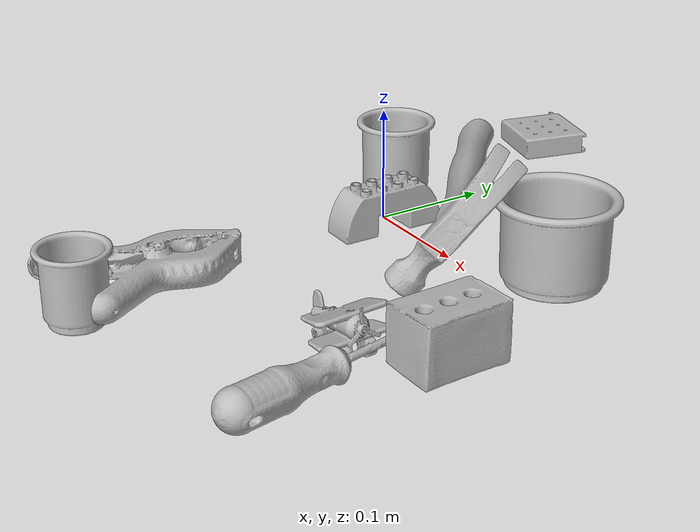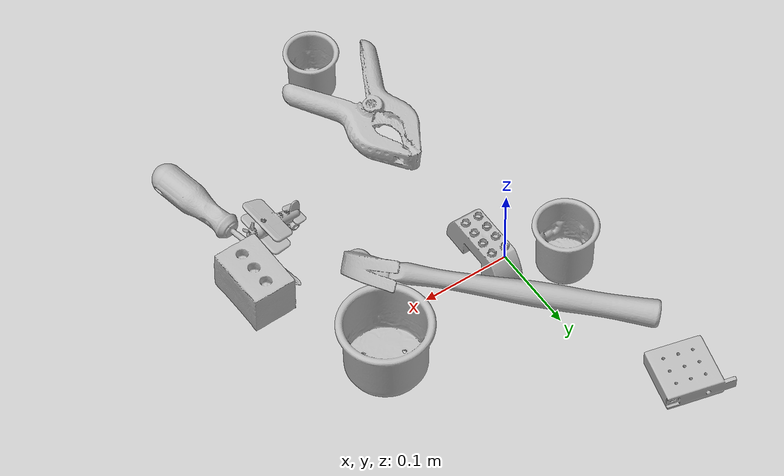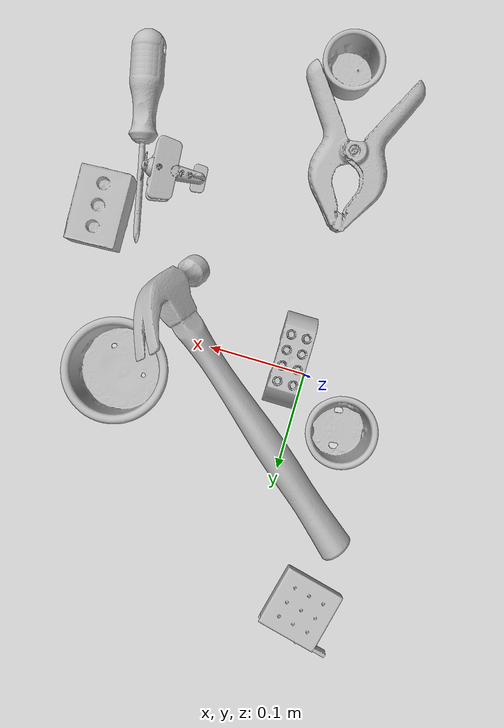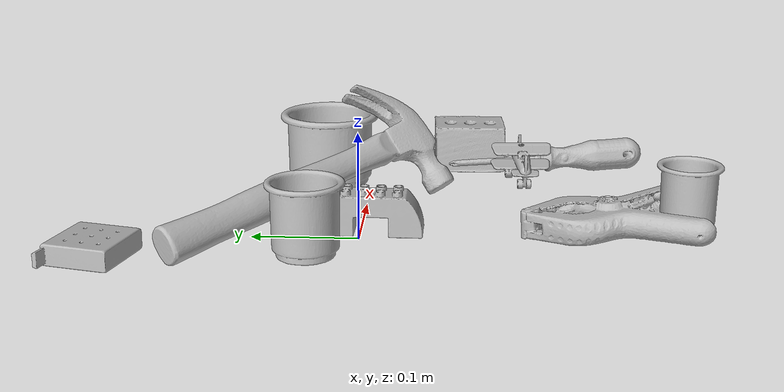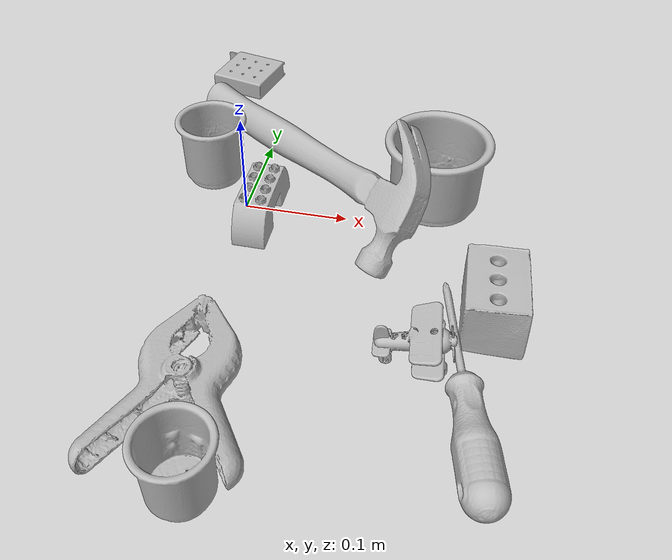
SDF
<sdf version="1.4">
  <world name="default">
    <light name="light1" type="point">
      <pose>0 0 1 0 0 0</pose>
      <diffuse>3 3 3 1</diffuse>
      <specular>3 3 3 1</specular>
    </light>
    <light name="light2" type="point">
      <pose>0 0.5 2 0 0 0</pose>
      <diffuse>1 1 1 1</diffuse>
      <specular>1 1 1 1</specular>
    </light>
    <light name="light3" type="point">
      <pose>0 0.5 2 0 0 0</pose>
      <diffuse>3 3 3 1</diffuse>
      <specular>3 3 3 1</specular>
    </light>
    <scene>
      <ambient>0.7 0.7 0.7</ambient>
    </scene>
    <model name="cup1">
      <link name="link_cup1">
        <collision name="default">
          <geometry>
            <mesh>
              <uri>model://j_cups/collision_meshes/collision.obj</uri>
              <scale>1.0 1.0 1.0</scale>
            </mesh>
          </geometry>
          <surface>
            <friction>
              <ode>
                <mu>0.5</mu>
                <mu2>0.5</mu2>
              </ode>
            </friction>
          <contact>
        <ode>
            <max_vel>0</max_vel>
            <min_depth>0.0001</min_depth>
            <kp>1e8</kp>
        </ode>
    </contact></surface>
        </collision>
        <visual name="default">
          <geometry>
            <mesh>
              <uri>model://j_cups/visual_meshes/visual.dae</uri>
              <scale>1.0 1.0 1.0</scale>
            </mesh>
          </geometry>
        </visual>
        <inertial>
          <mass>0.1112113818526268</mass>
          <pose>0.0006164852529764175 0.0005398975918069482 -0.0013479019980877638 0.030303955005909274 0.03757984422505388 0.4386955526072484</pose>
          <inertia>
            <ixx>0.00016329347</ixx>
            <iyy>0.00016499148</iyy>
            <izz>0.00018824349</izz>
            <ixy>0</ixy>
            <ixz>0</ixz>
            <iyz>0</iyz>
          </inertia>
        </inertial>
      </link>
      <pose>0.18004707992076874 0.045267388224601746 0.037988994270563126 3.0765977532575177e-08 2.062563189588567e-07 -0.3162860811401416</pose>
    </model>
    <model name="cup2">
      <link name="link_cup2">
        <collision name="default">
          <geometry>
            <mesh>
              <uri>model://b_cups/collision_meshes/collision.obj</uri>
              <scale>1.0 1.0 1.0</scale>
            </mesh>
          </geometry>
          <surface>
            <friction>
              <ode>
                <mu>0.5</mu>
                <mu2>0.5</mu2>
              </ode>
            </friction>
          <contact>
        <ode>
            <max_vel>0</max_vel>
            <min_depth>0.0001</min_depth>
            <kp>1e8</kp>
        </ode>
    </contact></surface>
        </collision>
        <visual name="default">
          <geometry>
            <mesh>
              <uri>model://b_cups/visual_meshes/visual.dae</uri>
              <scale>1.0 1.0 1.0</scale>
            </mesh>
          </geometry>
        </visual>
        <inertial>
          <mass>0.040588438510894775</mass>
          <pose>0.0005182006862014532 0.001805859268642962 -0.001338181202299893 0.11356319114734177 0.03872522211554688 -0.34569586720892936</pose>
          <inertia>
            <ixx>2.6567977e-05</ixx>
            <iyy>2.6063572e-05</iyy>
            <izz>2.235645e-05</izz>
            <ixy>0</ixy>
            <ixz>0</ixz>
            <iyz>0</iyz>
          </inertia>
        </inertial>
      </link>
      <pose>0.04127872735261917 -0.30544090270996094 0.03199617564678192 -0.0076560832751786 -0.003787639568768667 -1.1625403574126632</pose>
    </model>
    <model name="cup3">
      <link name="link_cup3">
        <collision name="default">
          <geometry>
            <mesh>
              <uri>model://d_cups/collision_meshes/collision.obj</uri>
              <scale>1.0 1.0 1.0</scale>
            </mesh>
          </geometry>
          <surface>
            <friction>
              <ode>
                <mu>0.5</mu>
                <mu2>0.5</mu2>
              </ode>
            </friction>
          <contact>
        <ode>
            <max_vel>0</max_vel>
            <min_depth>0.0001</min_depth>
            <kp>1e8</kp>
        </ode>
    </contact></surface>
        </collision>
        <visual name="default">
          <geometry>
            <mesh>
              <uri>model://d_cups/visual_meshes/visual.dae</uri>
              <scale>1.0 1.0 1.0</scale>
            </mesh>
          </geometry>
        </visual>
        <inertial>
          <mass>0.030152590945363045</mass>
          <pose>0.000806804746389389 0.0019117394695058465 -0.0022666517179459333 0.2401234305416289 -0.2470973002062907 0.5942515272324471</pose>
          <inertia>
            <ixx>2.5244808e-05</ixx>
            <iyy>2.517175e-05</iyy>
            <izz>2.2850849e-05</izz>
            <ixy>0</ixy>
            <ixz>0</ixz>
            <iyz>0</iyz>
          </inertia>
        </inertial>
      </link>
      <pose>-0.04556804895401001 0.04319385811686516 0.034659113734960556 3.2743167867430136e-05 5.830117747483499e-06 -2.026661749249944</pose>
    </model>
    <model name="toy1">
      <link name="link_toy1">
        <collision name="default">
          <geometry>
            <mesh>
              <uri>model://e_lego_duplo/collision_meshes/collision.obj</uri>
              <scale>1.0 1.0 1.0</scale>
            </mesh>
          </geometry>
          <surface>
            <friction>
              <ode>
                <mu>0.5</mu>
                <mu2>0.5</mu2>
              </ode>
            </friction>
          <contact>
        <ode>
            <max_vel>0</max_vel>
            <min_depth>0.0001</min_depth>
            <kp>1e8</kp>
        </ode>
    </contact></surface>
        </collision>
        <visual name="default">
          <geometry>
            <mesh>
              <uri>model://e_lego_duplo/visual_meshes/visual.dae</uri>
              <scale>1.0 1.0 1.0</scale>
            </mesh>
          </geometry>
        </visual>
        <inertial>
          <mass>0.09282131493091583</mass>
          <pose>0.0003256045747548342 0.00023485456767957658 0.0019521460635587573 -0.022567664257634346 -6.825452093688492e-05 -0.007625138047361518</pose>
          <inertia>
            <ixx>1.9356308e-05</ixx>
            <iyy>7.944328e-05</iyy>
            <izz>7.736177e-05</izz>
            <ixy>0</ixy>
            <ixz>0</ixz>
            <iyz>0</iyz>
          </inertia>
        </inertial>
      </link>
      <pose>0.018333036452531815 -0.010550901293754578 0.02180900052189827 6.377704598907407e-08 -3.3929067773869514e-07 1.5654571001126922</pose>
    </model>
    <model name="toy2">
      <link name="link_toy2">
        <collision name="default">
          <geometry>
            <mesh>
              <uri>model://nine_hole_peg_test/collision_meshes/collision.obj</uri>
              <scale>0.5 0.5 0.5</scale>
            </mesh>
          </geometry>
          <surface>
            <friction>
              <ode>
                <mu>0.5</mu>
                <mu2>0.5</mu2>
              </ode>
            </friction>
          <contact>
        <ode>
            <max_vel>0</max_vel>
            <min_depth>0.0001</min_depth>
            <kp>1e8</kp>
        </ode>
    </contact></surface>
        </collision>
        <visual name="default">
          <geometry>
            <mesh>
              <uri>model://nine_hole_peg_test/visual_meshes/visual.dae</uri>
              <scale>0.5 0.5 0.5</scale>
            </mesh>
          </geometry>
        </visual>
        <inertial>
          <mass>0.0661587193608284</mass>
          <pose>-0.002308693015947938 -0.0048238071613013744 1.3230345757619943e-05 -0.0014666794270044752 0.0007194176174711586 -0.6342418340283942</pose>
          <inertia>
            <ixx>2.5862508e-05</ixx>
            <iyy>2.4147552e-05</iyy>
            <izz>4.531874e-05</izz>
            <ixy>0</ixy>
            <ixz>0</ixz>
            <iyz>0</iyz>
          </inertia>
        </inertial>
      </link>
      <pose>-0.06571250408887863 0.2331993728876114 0.010385501198470592 -9.513555370571636e-09 6.830125504573866e-09 1.3348174572165104</pose>
    </model>
    <model name="toy3">
      <link name="link_toy3">
        <collision name="default">
          <geometry>
            <mesh>
              <uri>model://foam_brick/collision_meshes/collision.obj</uri>
              <scale>1.0 1.0 1.0</scale>
            </mesh>
          </geometry>
          <surface>
            <friction>
              <ode>
                <mu>0.5</mu>
                <mu2>0.5</mu2>
              </ode>
            </friction>
          <contact>
        <ode>
            <max_vel>0</max_vel>
            <min_depth>0.0001</min_depth>
            <kp>1e8</kp>
        </ode>
    </contact></surface>
        </collision>
        <visual name="default">
          <geometry>
            <mesh>
              <uri>model://foam_brick/visual_meshes/visual.dae</uri>
              <scale>1.0 1.0 1.0</scale>
            </mesh>
          </geometry>
        </visual>
        <inertial>
          <mass>0.15239986777305603</mass>
          <pose>-0.00025224717683158815 0.0003458431747276336 -0.00025321010616607964 -0.29401565585717926 0.017274441097588973 -0.0007449887293440311</pose>
          <inertia>
            <ixx>6.6571105e-05</ixx>
            <iyy>0.00010628419</iyy>
            <izz>0.00010763494</izz>
            <ixy>0</ixy>
            <ixz>0</ixz>
            <iyz>0</iyz>
          </inertia>
        </inertial>
      </link>
      <pose>0.24268372356891632 -0.103813037276268 0.02592279762029648 0.013413512126722751 0.004151621686223631 -1.5390959341750734</pose>
    </model>
    <model name="toy4">
      <link name="link_toy4">
        <collision name="default">
          <geometry>
            <mesh>
              <uri>model://a_toy_airplane/collision_meshes/collision.obj</uri>
              <scale>0.25 0.25 0.25</scale>
            </mesh>
          </geometry>
          <surface>
            <friction>
              <ode>
                <mu>0.5</mu>
                <mu2>0.5</mu2>
              </ode>
            </friction>
          <contact>
        <ode>
            <max_vel>0</max_vel>
            <min_depth>0.0001</min_depth>
            <kp>1e8</kp>
        </ode>
    </contact></surface>
        </collision>
        <visual name="default">
          <geometry>
            <mesh>
              <uri>model://a_toy_airplane/visual_meshes/visual.dae</uri>
              <scale>0.25 0.25 0.25</scale>
            </mesh>
          </geometry>
        </visual>
        <inertial>
          <mass>0.01630575954914093</mass>
          <pose>0.006291272584348917 -0.0009268299327231944 -0.0002990612993016839 -0.012016942866631759 -0.1466350865210375 0.004149072887705313</pose>
          <inertia>
            <ixx>3.7008767e-06</ixx>
            <iyy>5.392928e-06</iyy>
            <izz>6.314456e-06</izz>
            <ixy>0</ixy>
            <ixz>0</ixz>
            <iyz>0</iyz>
          </inertia>
        </inertial>
      </link>
      <pose>0.18308475613594055 -0.158037468791008 0.02309008501470089 -0.00014589273366147847 1.723692222479235e-05 0.06577250144604074</pose>
    </model>
    <model name="hardware1">
      <link name="link_hardware1">
        <collision name="default">
          <geometry>
            <mesh>
              <uri>model://phillips_screwdriver/collision_meshes/collision.obj</uri>
              <scale>1.0 1.0 1.0</scale>
            </mesh>
          </geometry>
          <surface>
            <friction>
              <ode>
                <mu>0.5</mu>
                <mu2>0.5</mu2>
              </ode>
            </friction>
          <contact>
        <ode>
            <max_vel>0</max_vel>
            <min_depth>0.0001</min_depth>
            <kp>1e8</kp>
        </ode>
    </contact></surface>
        </collision>
        <visual name="default">
          <geometry>
            <mesh>
              <uri>model://phillips_screwdriver/visual_meshes/visual.dae</uri>
              <scale>1.0 1.0 1.0</scale>
            </mesh>
          </geometry>
        </visual>
        <inertial>
          <mass>0.05757145583629608</mass>
          <pose>-0.04777182266116142 0.001036230125464499 -0.000455554953077808 -0.1572215307256514 0.005850991069928943 -0.0021567397451199392</pose>
          <inertia>
            <ixx>6.764056e-06</ixx>
            <iyy>8.480946e-05</iyy>
            <izz>8.4881525e-05</izz>
            <ixy>0</ixy>
            <ixz>0</ixz>
            <iyz>0</iyz>
          </inertia>
        </inertial>
      </link>
      <pose>0.225941464304924 -0.1892397254705429 0.016631081700325012 0.06125227589845174 0.013341713797239045 1.7847846820241304</pose>
    </model>
    <model name="hardware2">
      <link name="link_hardware2">
        <collision name="default">
          <geometry>
            <mesh>
              <uri>model://hammer/collision_meshes/collision.obj</uri>
              <scale>1.0 1.0 1.0</scale>
            </mesh>
          </geometry>
          <surface>
            <friction>
              <ode>
                <mu>0.5</mu>
                <mu2>0.5</mu2>
              </ode>
            </friction>
          <contact>
        <ode>
            <max_vel>0</max_vel>
            <min_depth>0.0001</min_depth>
            <kp>1e8</kp>
        </ode>
    </contact></surface>
        </collision>
        <visual name="default">
          <geometry>
            <mesh>
              <uri>model://hammer/visual_meshes/visual.dae</uri>
              <scale>1.0 1.0 1.0</scale>
            </mesh>
          </geometry>
        </visual>
        <inertial>
          <mass>0.19043192267417908</mass>
          <pose>0.00941577646881342 -0.011892358772456646 -0.0001235063245985657 0.023155672419862355 -0.004792164441448863 -0.012760315407460211</pose>
          <inertia>
            <ixx>8.15718e-05</ixx>
            <iyy>0.0022103586</iyy>
            <izz>0.002273686</izz>
            <ixy>0</ixy>
            <ixz>0</ixz>
            <iyz>0</iyz>
          </inertia>
        </inertial>
      </link>
      <pose>0.05658816546201706 0.05259718745946884 0.047949276864528656 0.8594827663722089 -0.11633518006415038 -0.7062736280500684</pose>
    </model>
    <model name="hardware3">
      <link name="link_hardware3">
        <collision name="default">
          <geometry>
            <mesh>
              <uri>model://large_clamp/collision_meshes/collision.obj</uri>
              <scale>1.0 1.0 1.0</scale>
            </mesh>
          </geometry>
          <surface>
            <friction>
              <ode>
                <mu>0.5</mu>
                <mu2>0.5</mu2>
              </ode>
            </friction>
          <contact>
        <ode>
            <max_vel>0</max_vel>
            <min_depth>0.0001</min_depth>
            <kp>1e8</kp>
        </ode>
    </contact></surface>
        </collision>
        <visual name="default">
          <geometry>
            <mesh>
              <uri>model://large_clamp/visual_meshes/visual.dae</uri>
              <scale>1.0 1.0 1.0</scale>
            </mesh>
          </geometry>
        </visual>
        <inertial>
          <mass>0.18636001646518707</mass>
          <pose>0.006369354669004679 0.0003585688828025013 -0.0001839799078879878 -0.0021330740505354343 0.009671591251539349 0.02663317297682702</pose>
          <inertia>
            <ixx>0.0001644205</ixx>
            <iyy>0.00031224336</iyy>
            <izz>0.00045169977</izz>
            <ixy>0</ixy>
            <ixz>0</ixz>
            <iyz>0</iyz>
          </inertia>
        </inertial>
      </link>
      <pose>0.016910819336771965 -0.229598730802536 0.018504153937101364 -0.011577070969741343 0.046927699981328085 1.6352114142446332</pose>
    </model>
  <physics type="ode">
      <max_contacts>50</max_contacts>
      <ode>
        <solver>
          <type>quick</type>
          <iters>75</iters>
        </solver>
        <constraints>
          <contact_max_correcting_vel>0</contact_max_correcting_vel>
          <contact_surface_layer>0</contact_surface_layer>
        </constraints>
      </ode>
    </physics></world>
</sdf>
